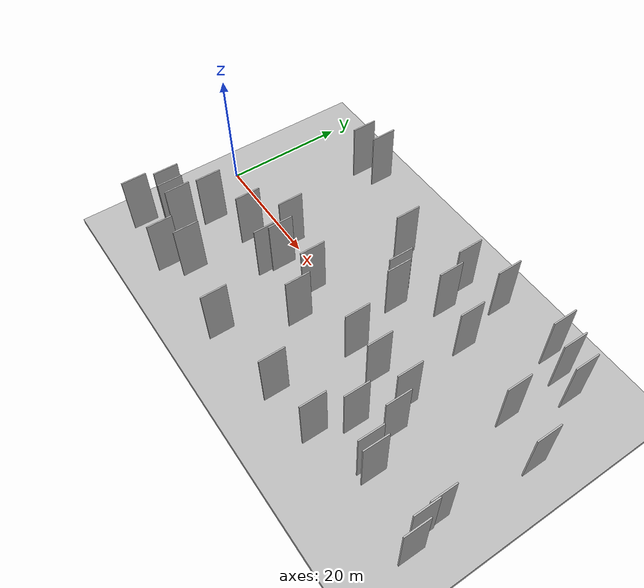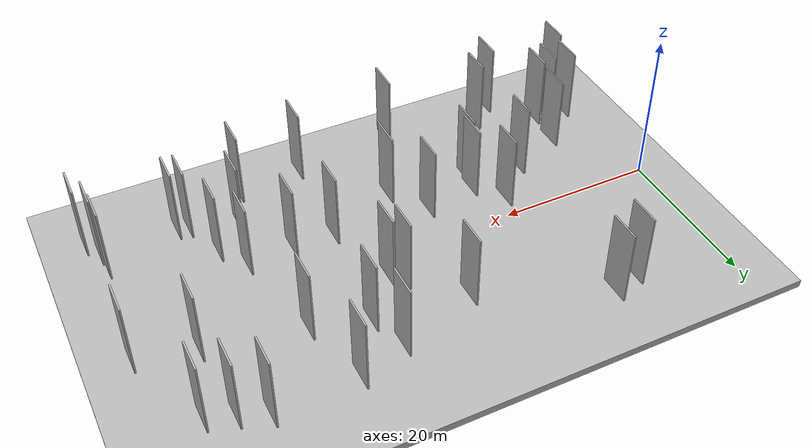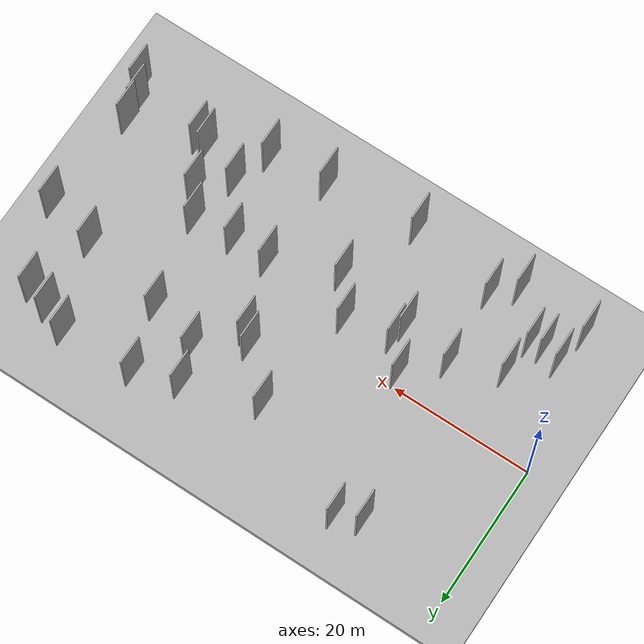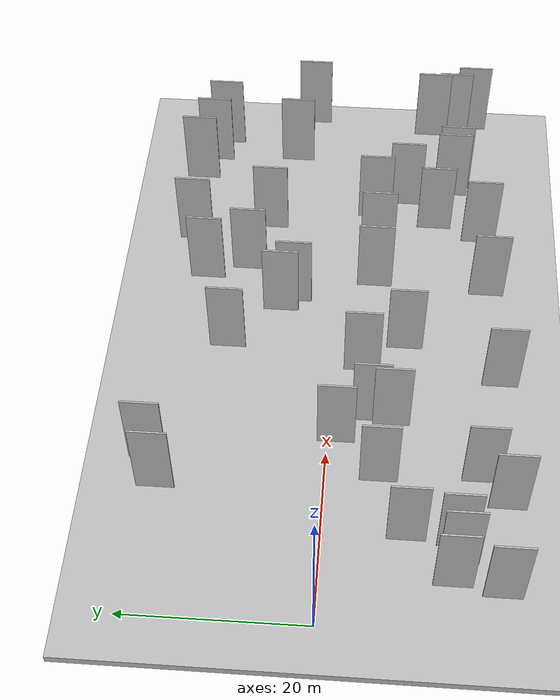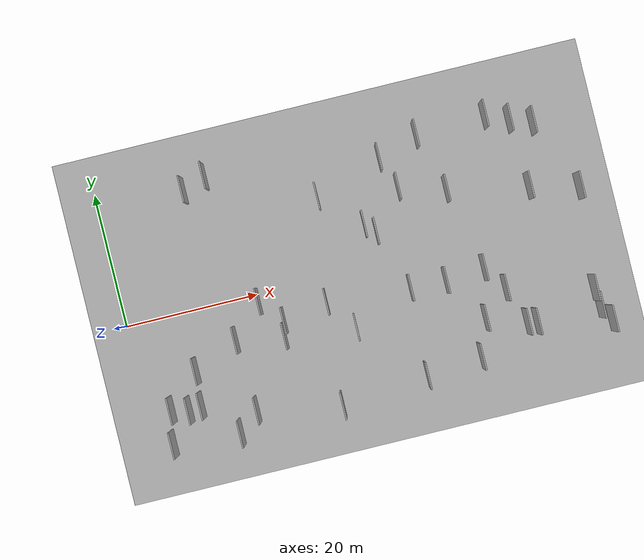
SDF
<?xml version="1.0" encoding="utf-8"?>

<sdf version="1.6">

   <world name="default">

      <gui fullscreen="0">

         <camera name="user_camera">

            <pose>-15 0 4.57585 0 0 0</pose>

            <view_controller>orbit</view_controller>

         </camera>

      </gui>

      <scene>

         <sky>

           <clouds>

             <speed>12</speed>

           </clouds>

         </sky>

         <ambient>0.4 0.4 0.4 1</ambient>

         <background>0.7 0.7 0.7 1</background>

         <shadows>1</shadows>

      </scene>

      <gravity>0 0 -9.8066</gravity>

      <magnetic_field>6e-06 2.3e-05 -4.2e-05</magnetic_field>

      <physics default="0" name="default_physics" type="ode">

         <ode>

            <solver>

               <type>quick</type>

               <iters>10</iters>

               <sor>1.0</sor>

               <use_dynamic_moi_rescaling>0</use_dynamic_moi_rescaling>

            </solver>

            <constraints>

               <cfm>0</cfm>

               <erp>0.2</erp>

               <contact_max_correcting_vel>100</contact_max_correcting_vel>

               <contact_surface_layer>0.001</contact_surface_layer>

            </constraints>

         </ode>

         <max_step_size>0.004</max_step_size>

         <real_time_factor>1</real_time_factor>

         <real_time_update_rate>250</real_time_update_rate>

      </physics>

      <light name="sun" type="directional">

         <cast_shadows>1</cast_shadows>

         <pose>0 0 10 0 0 0</pose>

         <diffuse>0.8 0.8 0.8 1</diffuse>

         <specular>0.2 0.2 0.2 1</specular>

         <attenuation>

            <range>1000</range>

            <constant>0.9</constant>

            <linear>0.01</linear>

            <quadratic>0.001</quadratic>

         </attenuation>

         <direction>-0.5 0.1 -0.9</direction>

      </light>

      <include>

         <name>ground_plane_1</name>

         <uri>model://HANNAS_ground_plane</uri>

         <pose>0 0 0  0 0 0</pose>

      </include>

      <include>

         <name>ground_plane_2</name>

         <uri>model://HANNAS_ground_plane</uri>

         <pose>100 0 0  0 0 0</pose>

      </include>

      <model name="HANNAS_wall_1">

         <static>1</static>

         <pose frame="">50.6397 8.4226 2.5 0.000000 0.000000 1.570796</pose>

         <link name="link">

            <pose frame="">0 0 5.00 0 0 0</pose>

            <collision name="collision">

               <geometry>

                  <box>

                     <size>4.00 0.2 10.00</size>

                  </box>

               </geometry>

               <max_contacts>10</max_contacts>

               <surface>

                  <contact>

                     <ode/>

                  </contact>

                  <bounce/>

                  <friction>

                     <torsional>

                        <ode/>

                     </torsional>

                     <ode/>

                  </friction>

               </surface>

            </collision>

            <visual name="visual">

               <cast_shadows>0</cast_shadows>

               <geometry>

                  <box>

                     <size>4.00 0.2 10.00</size>

                  </box>

               </geometry>

               <material>

                  <script>

                     <uri>model://HANNAS_wall/materials/scripts</uri>

                     <uri>model://HANNAS_wall/materials/textures</uri>

                     <name>vrc/HANNAS_wall</name>

                  </script>

               </material>

            </visual>

            <self_collide>0</self_collide>

            <enable_wind>0</enable_wind>

            <kinematic>0</kinematic>

         </link>

      </model>

      <model name="HANNAS_wall_2">

         <static>1</static>

         <pose frame="">43.8307 10.3824 2.5 0.000000 0.000000 1.570796</pose>

         <link name="link">

            <pose frame="">0 0 5.00 0 0 0</pose>

            <collision name="collision">

               <geometry>

                  <box>

                     <size>4.00 0.2 10.00</size>

                  </box>

               </geometry>

               <max_contacts>10</max_contacts>

               <surface>

                  <contact>

                     <ode/>

                  </contact>

                  <bounce/>

                  <friction>

                     <torsional>

                        <ode/>

                     </torsional>

                     <ode/>

                  </friction>

               </surface>

            </collision>

            <visual name="visual">

               <cast_shadows>0</cast_shadows>

               <geometry>

                  <box>

                     <size>4.00 0.2 10.00</size>

                  </box>

               </geometry>

               <material>

                  <script>

                     <uri>model://HANNAS_wall/materials/scripts</uri>

                     <uri>model://HANNAS_wall/materials/textures</uri>

                     <name>vrc/HANNAS_wall</name>

                  </script>

               </material>

            </visual>

            <self_collide>0</self_collide>

            <enable_wind>0</enable_wind>

            <kinematic>0</kinematic>

         </link>

      </model>

      <model name="HANNAS_wall_3">

         <static>1</static>

         <pose frame="">42.1590 -4.3269 2.5 0.000000 0.000000 1.570796</pose>

         <link name="link">

            <pose frame="">0 0 5.00 0 0 0</pose>

            <collision name="collision">

               <geometry>

                  <box>

                     <size>4.00 0.2 10.00</size>

                  </box>

               </geometry>

               <max_contacts>10</max_contacts>

               <surface>

                  <contact>

                     <ode/>

                  </contact>

                  <bounce/>

                  <friction>

                     <torsional>

                        <ode/>

                     </torsional>

                     <ode/>

                  </friction>

               </surface>

            </collision>

            <visual name="visual">

               <cast_shadows>0</cast_shadows>

               <geometry>

                  <box>

                     <size>4.00 0.2 10.00</size>

                  </box>

               </geometry>

               <material>

                  <script>

                     <uri>model://HANNAS_wall/materials/scripts</uri>

                     <uri>model://HANNAS_wall/materials/textures</uri>

                     <name>vrc/HANNAS_wall</name>

                  </script>

               </material>

            </visual>

            <self_collide>0</self_collide>

            <enable_wind>0</enable_wind>

            <kinematic>0</kinematic>

         </link>

      </model>

      <model name="HANNAS_wall_4">

         <static>1</static>

         <pose frame="">69.5926 4.2536 2.5 0.000000 0.000000 1.570796</pose>

         <link name="link">

            <pose frame="">0 0 5.00 0 0 0</pose>

            <collision name="collision">

               <geometry>

                  <box>

                     <size>4.00 0.2 10.00</size>

                  </box>

               </geometry>

               <max_contacts>10</max_contacts>

               <surface>

                  <contact>

                     <ode/>

                  </contact>

                  <bounce/>

                  <friction>

                     <torsional>

                        <ode/>

                     </torsional>

                     <ode/>

                  </friction>

               </surface>

            </collision>

            <visual name="visual">

               <cast_shadows>0</cast_shadows>

               <geometry>

                  <box>

                     <size>4.00 0.2 10.00</size>

                  </box>

               </geometry>

               <material>

                  <script>

                     <uri>model://HANNAS_wall/materials/scripts</uri>

                     <uri>model://HANNAS_wall/materials/textures</uri>

                     <name>vrc/HANNAS_wall</name>

                  </script>

               </material>

            </visual>

            <self_collide>0</self_collide>

            <enable_wind>0</enable_wind>

            <kinematic>0</kinematic>

         </link>

      </model>

      <model name="HANNAS_wall_5">

         <static>1</static>

         <pose frame="">65.1094 15.0538 2.5 0.000000 0.000000 1.570796</pose>

         <link name="link">

            <pose frame="">0 0 5.00 0 0 0</pose>

            <collision name="collision">

               <geometry>

                  <box>

                     <size>4.00 0.2 10.00</size>

                  </box>

               </geometry>

               <max_contacts>10</max_contacts>

               <surface>

                  <contact>

                     <ode/>

                  </contact>

                  <bounce/>

                  <friction>

                     <torsional>

                        <ode/>

                     </torsional>

                     <ode/>

                  </friction>

               </surface>

            </collision>

            <visual name="visual">

               <cast_shadows>0</cast_shadows>

               <geometry>

                  <box>

                     <size>4.00 0.2 10.00</size>

                  </box>

               </geometry>

               <material>

                  <script>

                     <uri>model://HANNAS_wall/materials/scripts</uri>

                     <uri>model://HANNAS_wall/materials/textures</uri>

                     <name>vrc/HANNAS_wall</name>

                  </script>

               </material>

            </visual>

            <self_collide>0</self_collide>

            <enable_wind>0</enable_wind>

            <kinematic>0</kinematic>

         </link>

      </model>

      <model name="HANNAS_wall_6">

         <static>1</static>

         <pose frame="">8.9120 -8.6867 2.5 0.000000 0.000000 1.570796</pose>

         <link name="link">

            <pose frame="">0 0 5.00 0 0 0</pose>

            <collision name="collision">

               <geometry>

                  <box>

                     <size>4.00 0.2 10.00</size>

                  </box>

               </geometry>

               <max_contacts>10</max_contacts>

               <surface>

                  <contact>

                     <ode/>

                  </contact>

                  <bounce/>

                  <friction>

                     <torsional>

                        <ode/>

                     </torsional>

                     <ode/>

                  </friction>

               </surface>

            </collision>

            <visual name="visual">

               <cast_shadows>0</cast_shadows>

               <geometry>

                  <box>

                     <size>4.00 0.2 10.00</size>

                  </box>

               </geometry>

               <material>

                  <script>

                     <uri>model://HANNAS_wall/materials/scripts</uri>

                     <uri>model://HANNAS_wall/materials/textures</uri>

                     <name>vrc/HANNAS_wall</name>

                  </script>

               </material>

            </visual>

            <self_collide>0</self_collide>

            <enable_wind>0</enable_wind>

            <kinematic>0</kinematic>

         </link>

      </model>

      <model name="HANNAS_wall_7">

         <static>1</static>

         <pose frame="">6.6334 -13.9903 2.5 0.000000 0.000000 1.570796</pose>

         <link name="link">

            <pose frame="">0 0 5.00 0 0 0</pose>

            <collision name="collision">

               <geometry>

                  <box>

                     <size>4.00 0.2 10.00</size>

                  </box>

               </geometry>

               <max_contacts>10</max_contacts>

               <surface>

                  <contact>

                     <ode/>

                  </contact>

                  <bounce/>

                  <friction>

                     <torsional>

                        <ode/>

                     </torsional>

                     <ode/>

                  </friction>

               </surface>

            </collision>

            <visual name="visual">

               <cast_shadows>0</cast_shadows>

               <geometry>

                  <box>

                     <size>4.00 0.2 10.00</size>

                  </box>

               </geometry>

               <material>

                  <script>

                     <uri>model://HANNAS_wall/materials/scripts</uri>

                     <uri>model://HANNAS_wall/materials/textures</uri>

                     <name>vrc/HANNAS_wall</name>

                  </script>

               </material>

            </visual>

            <self_collide>0</self_collide>

            <enable_wind>0</enable_wind>

            <kinematic>0</kinematic>

         </link>

      </model>

      <model name="HANNAS_wall_8">

         <static>1</static>

         <pose frame="">53.2433 -4.0033 2.5 0.000000 0.000000 1.570796</pose>

         <link name="link">

            <pose frame="">0 0 5.00 0 0 0</pose>

            <collision name="collision">

               <geometry>

                  <box>

                     <size>4.00 0.2 10.00</size>

                  </box>

               </geometry>

               <max_contacts>10</max_contacts>

               <surface>

                  <contact>

                     <ode/>

                  </contact>

                  <bounce/>

                  <friction>

                     <torsional>

                        <ode/>

                     </torsional>

                     <ode/>

                  </friction>

               </surface>

            </collision>

            <visual name="visual">

               <cast_shadows>0</cast_shadows>

               <geometry>

                  <box>

                     <size>4.00 0.2 10.00</size>

                  </box>

               </geometry>

               <material>

                  <script>

                     <uri>model://HANNAS_wall/materials/scripts</uri>

                     <uri>model://HANNAS_wall/materials/textures</uri>

                     <name>vrc/HANNAS_wall</name>

                  </script>

               </material>

            </visual>

            <self_collide>0</self_collide>

            <enable_wind>0</enable_wind>

            <kinematic>0</kinematic>

         </link>

      </model>

      <model name="HANNAS_wall_9">

         <static>1</static>

         <pose frame="">49.8669 -16.4884 2.5 0.000000 0.000000 1.570796</pose>

         <link name="link">

            <pose frame="">0 0 5.00 0 0 0</pose>

            <collision name="collision">

               <geometry>

                  <box>

                     <size>4.00 0.2 10.00</size>

                  </box>

               </geometry>

               <max_contacts>10</max_contacts>

               <surface>

                  <contact>

                     <ode/>

                  </contact>

                  <bounce/>

                  <friction>

                     <torsional>

                        <ode/>

                     </torsional>

                     <ode/>

                  </friction>

               </surface>

            </collision>

            <visual name="visual">

               <cast_shadows>0</cast_shadows>

               <geometry>

                  <box>

                     <size>4.00 0.2 10.00</size>

                  </box>

               </geometry>

               <material>

                  <script>

                     <uri>model://HANNAS_wall/materials/scripts</uri>

                     <uri>model://HANNAS_wall/materials/textures</uri>

                     <name>vrc/HANNAS_wall</name>

                  </script>

               </material>

            </visual>

            <self_collide>0</self_collide>

            <enable_wind>0</enable_wind>

            <kinematic>0</kinematic>

         </link>

      </model>

      <model name="HANNAS_wall_10">

         <static>1</static>

         <pose frame="">47.4267 -4.4789 2.5 0.000000 0.000000 1.570796</pose>

         <link name="link">

            <pose frame="">0 0 5.00 0 0 0</pose>

            <collision name="collision">

               <geometry>

                  <box>

                     <size>4.00 0.2 10.00</size>

                  </box>

               </geometry>

               <max_contacts>10</max_contacts>

               <surface>

                  <contact>

                     <ode/>

                  </contact>

                  <bounce/>

                  <friction>

                     <torsional>

                        <ode/>

                     </torsional>

                     <ode/>

                  </friction>

               </surface>

            </collision>

            <visual name="visual">

               <cast_shadows>0</cast_shadows>

               <geometry>

                  <box>

                     <size>4.00 0.2 10.00</size>

                  </box>

               </geometry>

               <material>

                  <script>

                     <uri>model://HANNAS_wall/materials/scripts</uri>

                     <uri>model://HANNAS_wall/materials/textures</uri>

                     <name>vrc/HANNAS_wall</name>

                  </script>

               </material>

            </visual>

            <self_collide>0</self_collide>

            <enable_wind>0</enable_wind>

            <kinematic>0</kinematic>

         </link>

      </model>

      <model name="HANNAS_wall_11">

         <static>1</static>

         <pose frame="">32.1206 11.7842 2.5 0.000000 0.000000 1.570796</pose>

         <link name="link">

            <pose frame="">0 0 5.00 0 0 0</pose>

            <collision name="collision">

               <geometry>

                  <box>

                     <size>4.00 0.2 10.00</size>

                  </box>

               </geometry>

               <max_contacts>10</max_contacts>

               <surface>

                  <contact>

                     <ode/>

                  </contact>

                  <bounce/>

                  <friction>

                     <torsional>

                        <ode/>

                     </torsional>

                     <ode/>

                  </friction>

               </surface>

            </collision>

            <visual name="visual">

               <cast_shadows>0</cast_shadows>

               <geometry>

                  <box>

                     <size>4.00 0.2 10.00</size>

                  </box>

               </geometry>

               <material>

                  <script>

                     <uri>model://HANNAS_wall/materials/scripts</uri>

                     <uri>model://HANNAS_wall/materials/textures</uri>

                     <name>vrc/HANNAS_wall</name>

                  </script>

               </material>

            </visual>

            <self_collide>0</self_collide>

            <enable_wind>0</enable_wind>

            <kinematic>0</kinematic>

         </link>

      </model>

      <model name="HANNAS_wall_12">

         <static>1</static>

         <pose frame="">23.1400 -4.5914 2.5 0.000000 0.000000 1.570796</pose>

         <link name="link">

            <pose frame="">0 0 5.00 0 0 0</pose>

            <collision name="collision">

               <geometry>

                  <box>

                     <size>4.00 0.2 10.00</size>

                  </box>

               </geometry>

               <max_contacts>10</max_contacts>

               <surface>

                  <contact>

                     <ode/>

                  </contact>

                  <bounce/>

                  <friction>

                     <torsional>

                        <ode/>

                     </torsional>

                     <ode/>

                  </friction>

               </surface>

            </collision>

            <visual name="visual">

               <cast_shadows>0</cast_shadows>

               <geometry>

                  <box>

                     <size>4.00 0.2 10.00</size>

                  </box>

               </geometry>

               <material>

                  <script>

                     <uri>model://HANNAS_wall/materials/scripts</uri>

                     <uri>model://HANNAS_wall/materials/textures</uri>

                     <name>vrc/HANNAS_wall</name>

                  </script>

               </material>

            </visual>

            <self_collide>0</self_collide>

            <enable_wind>0</enable_wind>

            <kinematic>0</kinematic>

         </link>

      </model>

      <model name="HANNAS_wall_13">

         <static>1</static>

         <pose frame="">61.8893 16.1667 2.5 0.000000 0.000000 1.570796</pose>

         <link name="link">

            <pose frame="">0 0 5.00 0 0 0</pose>

            <collision name="collision">

               <geometry>

                  <box>

                     <size>4.00 0.2 10.00</size>

                  </box>

               </geometry>

               <max_contacts>10</max_contacts>

               <surface>

                  <contact>

                     <ode/>

                  </contact>

                  <bounce/>

                  <friction>

                     <torsional>

                        <ode/>

                     </torsional>

                     <ode/>

                  </friction>

               </surface>

            </collision>

            <visual name="visual">

               <cast_shadows>0</cast_shadows>

               <geometry>

                  <box>

                     <size>4.00 0.2 10.00</size>

                  </box>

               </geometry>

               <material>

                  <script>

                     <uri>model://HANNAS_wall/materials/scripts</uri>

                     <uri>model://HANNAS_wall/materials/textures</uri>

                     <name>vrc/HANNAS_wall</name>

                  </script>

               </material>

            </visual>

            <self_collide>0</self_collide>

            <enable_wind>0</enable_wind>

            <kinematic>0</kinematic>

         </link>

      </model>

      <model name="HANNAS_wall_14">

         <static>1</static>

         <pose frame="">55.6192 -7.6167 2.5 0.000000 0.000000 1.570796</pose>

         <link name="link">

            <pose frame="">0 0 5.00 0 0 0</pose>

            <collision name="collision">

               <geometry>

                  <box>

                     <size>4.00 0.2 10.00</size>

                  </box>

               </geometry>

               <max_contacts>10</max_contacts>

               <surface>

                  <contact>

                     <ode/>

                  </contact>

                  <bounce/>

                  <friction>

                     <torsional>

                        <ode/>

                     </torsional>

                     <ode/>

                  </friction>

               </surface>

            </collision>

            <visual name="visual">

               <cast_shadows>0</cast_shadows>

               <geometry>

                  <box>

                     <size>4.00 0.2 10.00</size>

                  </box>

               </geometry>

               <material>

                  <script>

                     <uri>model://HANNAS_wall/materials/scripts</uri>

                     <uri>model://HANNAS_wall/materials/textures</uri>

                     <name>vrc/HANNAS_wall</name>

                  </script>

               </material>

            </visual>

            <self_collide>0</self_collide>

            <enable_wind>0</enable_wind>

            <kinematic>0</kinematic>

         </link>

      </model>

      <model name="HANNAS_wall_15">

         <static>1</static>

         <pose frame="">4.0986 -13.3907 2.5 0.000000 0.000000 1.570796</pose>

         <link name="link">

            <pose frame="">0 0 5.00 0 0 0</pose>

            <collision name="collision">

               <geometry>

                  <box>

                     <size>4.00 0.2 10.00</size>

                  </box>

               </geometry>

               <max_contacts>10</max_contacts>

               <surface>

                  <contact>

                     <ode/>

                  </contact>

                  <bounce/>

                  <friction>

                     <torsional>

                        <ode/>

                     </torsional>

                     <ode/>

                  </friction>

               </surface>

            </collision>

            <visual name="visual">

               <cast_shadows>0</cast_shadows>

               <geometry>

                  <box>

                     <size>4.00 0.2 10.00</size>

                  </box>

               </geometry>

               <material>

                  <script>

                     <uri>model://HANNAS_wall/materials/scripts</uri>

                     <uri>model://HANNAS_wall/materials/textures</uri>

                     <name>vrc/HANNAS_wall</name>

                  </script>

               </material>

            </visual>

            <self_collide>0</self_collide>

            <enable_wind>0</enable_wind>

            <kinematic>0</kinematic>

         </link>

      </model>

      <model name="HANNAS_wall_16">

         <static>1</static>

         <pose frame="">20.1673 -1.0237 2.5 0.000000 0.000000 1.570796</pose>

         <link name="link">

            <pose frame="">0 0 5.00 0 0 0</pose>

            <collision name="collision">

               <geometry>

                  <box>

                     <size>4.00 0.2 10.00</size>

                  </box>

               </geometry>

               <max_contacts>10</max_contacts>

               <surface>

                  <contact>

                     <ode/>

                  </contact>

                  <bounce/>

                  <friction>

                     <torsional>

                        <ode/>

                     </torsional>

                     <ode/>

                  </friction>

               </surface>

            </collision>

            <visual name="visual">

               <cast_shadows>0</cast_shadows>

               <geometry>

                  <box>

                     <size>4.00 0.2 10.00</size>

                  </box>

               </geometry>

               <material>

                  <script>

                     <uri>model://HANNAS_wall/materials/scripts</uri>

                     <uri>model://HANNAS_wall/materials/textures</uri>

                     <name>vrc/HANNAS_wall</name>

                  </script>

               </material>

            </visual>

            <self_collide>0</self_collide>

            <enable_wind>0</enable_wind>

            <kinematic>0</kinematic>

         </link>

      </model>

      <model name="HANNAS_wall_17">

         <static>1</static>

         <pose frame="">28.6035 -18.6028 2.5 0.000000 0.000000 1.570796</pose>

         <link name="link">

            <pose frame="">0 0 5.00 0 0 0</pose>

            <collision name="collision">

               <geometry>

                  <box>

                     <size>4.00 0.2 10.00</size>

                  </box>

               </geometry>

               <max_contacts>10</max_contacts>

               <surface>

                  <contact>

                     <ode/>

                  </contact>

                  <bounce/>

                  <friction>

                     <torsional>

                        <ode/>

                     </torsional>

                     <ode/>

                  </friction>

               </surface>

            </collision>

            <visual name="visual">

               <cast_shadows>0</cast_shadows>

               <geometry>

                  <box>

                     <size>4.00 0.2 10.00</size>

                  </box>

               </geometry>

               <material>

                  <script>

                     <uri>model://HANNAS_wall/materials/scripts</uri>

                     <uri>model://HANNAS_wall/materials/textures</uri>

                     <name>vrc/HANNAS_wall</name>

                  </script>

               </material>

            </visual>

            <self_collide>0</self_collide>

            <enable_wind>0</enable_wind>

            <kinematic>0</kinematic>

         </link>

      </model>

      <model name="HANNAS_wall_18">

         <static>1</static>

         <pose frame="">69.6600 -15.6414 2.5 0.000000 0.000000 1.570796</pose>

         <link name="link">

            <pose frame="">0 0 5.00 0 0 0</pose>

            <collision name="collision">

               <geometry>

                  <box>

                     <size>4.00 0.2 10.00</size>

                  </box>

               </geometry>

               <max_contacts>10</max_contacts>

               <surface>

                  <contact>

                     <ode/>

                  </contact>

                  <bounce/>

                  <friction>

                     <torsional>

                        <ode/>

                     </torsional>

                     <ode/>

                  </friction>

               </surface>

            </collision>

            <visual name="visual">

               <cast_shadows>0</cast_shadows>

               <geometry>

                  <box>

                     <size>4.00 0.2 10.00</size>

                  </box>

               </geometry>

               <material>

                  <script>

                     <uri>model://HANNAS_wall/materials/scripts</uri>

                     <uri>model://HANNAS_wall/materials/textures</uri>

                     <name>vrc/HANNAS_wall</name>

                  </script>

               </material>

            </visual>

            <self_collide>0</self_collide>

            <enable_wind>0</enable_wind>

            <kinematic>0</kinematic>

         </link>

      </model>

      <model name="HANNAS_wall_19">

         <static>1</static>

         <pose frame="">58.5281 17.5975 2.5 0.000000 0.000000 1.570796</pose>

         <link name="link">

            <pose frame="">0 0 5.00 0 0 0</pose>

            <collision name="collision">

               <geometry>

                  <box>

                     <size>4.00 0.2 10.00</size>

                  </box>

               </geometry>

               <max_contacts>10</max_contacts>

               <surface>

                  <contact>

                     <ode/>

                  </contact>

                  <bounce/>

                  <friction>

                     <torsional>

                        <ode/>

                     </torsional>

                     <ode/>

                  </friction>

               </surface>

            </collision>

            <visual name="visual">

               <cast_shadows>0</cast_shadows>

               <geometry>

                  <box>

                     <size>4.00 0.2 10.00</size>

                  </box>

               </geometry>

               <material>

                  <script>

                     <uri>model://HANNAS_wall/materials/scripts</uri>

                     <uri>model://HANNAS_wall/materials/textures</uri>

                     <name>vrc/HANNAS_wall</name>

                  </script>

               </material>

            </visual>

            <self_collide>0</self_collide>

            <enable_wind>0</enable_wind>

            <kinematic>0</kinematic>

         </link>

      </model>

      <model name="HANNAS_wall_20">

         <static>1</static>

         <pose frame="">58.9130 -13.4479 2.5 0.000000 0.000000 1.570796</pose>

         <link name="link">

            <pose frame="">0 0 5.00 0 0 0</pose>

            <collision name="collision">

               <geometry>

                  <box>

                     <size>4.00 0.2 10.00</size>

                  </box>

               </geometry>

               <max_contacts>10</max_contacts>

               <surface>

                  <contact>

                     <ode/>

                  </contact>

                  <bounce/>

                  <friction>

                     <torsional>

                        <ode/>

                     </torsional>

                     <ode/>

                  </friction>

               </surface>

            </collision>

            <visual name="visual">

               <cast_shadows>0</cast_shadows>

               <geometry>

                  <box>

                     <size>4.00 0.2 10.00</size>

                  </box>

               </geometry>

               <material>

                  <script>

                     <uri>model://HANNAS_wall/materials/scripts</uri>

                     <uri>model://HANNAS_wall/materials/textures</uri>

                     <name>vrc/HANNAS_wall</name>

                  </script>

               </material>

            </visual>

            <self_collide>0</self_collide>

            <enable_wind>0</enable_wind>

            <kinematic>0</kinematic>

         </link>

      </model>

      <model name="HANNAS_wall_21">

         <static>1</static>

         <pose frame="">15.6066 -5.6828 2.5 0.000000 0.000000 1.570796</pose>

         <link name="link">

            <pose frame="">0 0 5.00 0 0 0</pose>

            <collision name="collision">

               <geometry>

                  <box>

                     <size>4.00 0.2 10.00</size>

                  </box>

               </geometry>

               <max_contacts>10</max_contacts>

               <surface>

                  <contact>

                     <ode/>

                  </contact>

                  <bounce/>

                  <friction>

                     <torsional>

                        <ode/>

                     </torsional>

                     <ode/>

                  </friction>

               </surface>

            </collision>

            <visual name="visual">

               <cast_shadows>0</cast_shadows>

               <geometry>

                  <box>

                     <size>4.00 0.2 10.00</size>

                  </box>

               </geometry>

               <material>

                  <script>

                     <uri>model://HANNAS_wall/materials/scripts</uri>

                     <uri>model://HANNAS_wall/materials/textures</uri>

                     <name>vrc/HANNAS_wall</name>

                  </script>

               </material>

            </visual>

            <self_collide>0</self_collide>

            <enable_wind>0</enable_wind>

            <kinematic>0</kinematic>

         </link>

      </model>

      <model name="HANNAS_wall_22">

         <static>1</static>

         <pose frame="">48.1696 17.2000 2.5 0.000000 0.000000 1.570796</pose>

         <link name="link">

            <pose frame="">0 0 5.00 0 0 0</pose>

            <collision name="collision">

               <geometry>

                  <box>

                     <size>4.00 0.2 10.00</size>

                  </box>

               </geometry>

               <max_contacts>10</max_contacts>

               <surface>

                  <contact>

                     <ode/>

                  </contact>

                  <bounce/>

                  <friction>

                     <torsional>

                        <ode/>

                     </torsional>

                     <ode/>

                  </friction>

               </surface>

            </collision>

            <visual name="visual">

               <cast_shadows>0</cast_shadows>

               <geometry>

                  <box>

                     <size>4.00 0.2 10.00</size>

                  </box>

               </geometry>

               <material>

                  <script>

                     <uri>model://HANNAS_wall/materials/scripts</uri>

                     <uri>model://HANNAS_wall/materials/textures</uri>

                     <name>vrc/HANNAS_wall</name>

                  </script>

               </material>

            </visual>

            <self_collide>0</self_collide>

            <enable_wind>0</enable_wind>

            <kinematic>0</kinematic>

         </link>

      </model>

      <model name="HANNAS_wall_23">

         <static>1</static>

         <pose frame="">13.3595 17.3573 2.5 0.000000 0.000000 1.570796</pose>

         <link name="link">

            <pose frame="">0 0 5.00 0 0 0</pose>

            <collision name="collision">

               <geometry>

                  <box>

                     <size>4.00 0.2 10.00</size>

                  </box>

               </geometry>

               <max_contacts>10</max_contacts>

               <surface>

                  <contact>

                     <ode/>

                  </contact>

                  <bounce/>

                  <friction>

                     <torsional>

                        <ode/>

                     </torsional>

                     <ode/>

                  </friction>

               </surface>

            </collision>

            <visual name="visual">

               <cast_shadows>0</cast_shadows>

               <geometry>

                  <box>

                     <size>4.00 0.2 10.00</size>

                  </box>

               </geometry>

               <material>

                  <script>

                     <uri>model://HANNAS_wall/materials/scripts</uri>

                     <uri>model://HANNAS_wall/materials/textures</uri>

                     <name>vrc/HANNAS_wall</name>

                  </script>

               </material>

            </visual>

            <self_collide>0</self_collide>

            <enable_wind>0</enable_wind>

            <kinematic>0</kinematic>

         </link>

      </model>

      <model name="HANNAS_wall_24">

         <static>1</static>

         <pose frame="">57.5227 -13.1504 2.5 0.000000 0.000000 1.570796</pose>

         <link name="link">

            <pose frame="">0 0 5.00 0 0 0</pose>

            <collision name="collision">

               <geometry>

                  <box>

                     <size>4.00 0.2 10.00</size>

                  </box>

               </geometry>

               <max_contacts>10</max_contacts>

               <surface>

                  <contact>

                     <ode/>

                  </contact>

                  <bounce/>

                  <friction>

                     <torsional>

                        <ode/>

                     </torsional>

                     <ode/>

                  </friction>

               </surface>

            </collision>

            <visual name="visual">

               <cast_shadows>0</cast_shadows>

               <geometry>

                  <box>

                     <size>4.00 0.2 10.00</size>

                  </box>

               </geometry>

               <material>

                  <script>

                     <uri>model://HANNAS_wall/materials/scripts</uri>

                     <uri>model://HANNAS_wall/materials/textures</uri>

                     <name>vrc/HANNAS_wall</name>

                  </script>

               </material>

            </visual>

            <self_collide>0</self_collide>

            <enable_wind>0</enable_wind>

            <kinematic>0</kinematic>

         </link>

      </model>

      <model name="HANNAS_wall_25">

         <static>1</static>

         <pose frame="">41.5627 -17.2891 2.5 0.000000 0.000000 1.570796</pose>

         <link name="link">

            <pose frame="">0 0 5.00 0 0 0</pose>

            <collision name="collision">

               <geometry>

                  <box>

                     <size>4.00 0.2 10.00</size>

                  </box>

               </geometry>

               <max_contacts>10</max_contacts>

               <surface>

                  <contact>

                     <ode/>

                  </contact>

                  <bounce/>

                  <friction>

                     <torsional>

                        <ode/>

                     </torsional>

                     <ode/>

                  </friction>

               </surface>

            </collision>

            <visual name="visual">

               <cast_shadows>0</cast_shadows>

               <geometry>

                  <box>

                     <size>4.00 0.2 10.00</size>

                  </box>

               </geometry>

               <material>

                  <script>

                     <uri>model://HANNAS_wall/materials/scripts</uri>

                     <uri>model://HANNAS_wall/materials/textures</uri>

                     <name>vrc/HANNAS_wall</name>

                  </script>

               </material>

            </visual>

            <self_collide>0</self_collide>

            <enable_wind>0</enable_wind>

            <kinematic>0</kinematic>

         </link>

      </model>

      <model name="HANNAS_wall_26">

         <static>1</static>

         <pose frame="">68.1840 -10.6696 2.5 0.000000 0.000000 1.570796</pose>

         <link name="link">

            <pose frame="">0 0 5.00 0 0 0</pose>

            <collision name="collision">

               <geometry>

                  <box>

                     <size>4.00 0.2 10.00</size>

                  </box>

               </geometry>

               <max_contacts>10</max_contacts>

               <surface>

                  <contact>

                     <ode/>

                  </contact>

                  <bounce/>

                  <friction>

                     <torsional>

                        <ode/>

                     </torsional>

                     <ode/>

                  </friction>

               </surface>

            </collision>

            <visual name="visual">

               <cast_shadows>0</cast_shadows>

               <geometry>

                  <box>

                     <size>4.00 0.2 10.00</size>

                  </box>

               </geometry>

               <material>

                  <script>

                     <uri>model://HANNAS_wall/materials/scripts</uri>

                     <uri>model://HANNAS_wall/materials/textures</uri>

                     <name>vrc/HANNAS_wall</name>

                  </script>

               </material>

            </visual>

            <self_collide>0</self_collide>

            <enable_wind>0</enable_wind>

            <kinematic>0</kinematic>

         </link>

      </model>

      <model name="HANNAS_wall_27">

         <static>1</static>

         <pose frame="">62.4674 6.0219 2.5 0.000000 0.000000 1.570796</pose>

         <link name="link">

            <pose frame="">0 0 5.00 0 0 0</pose>

            <collision name="collision">

               <geometry>

                  <box>

                     <size>4.00 0.2 10.00</size>

                  </box>

               </geometry>

               <max_contacts>10</max_contacts>

               <surface>

                  <contact>

                     <ode/>

                  </contact>

                  <bounce/>

                  <friction>

                     <torsional>

                        <ode/>

                     </torsional>

                     <ode/>

                  </friction>

               </surface>

            </collision>

            <visual name="visual">

               <cast_shadows>0</cast_shadows>

               <geometry>

                  <box>

                     <size>4.00 0.2 10.00</size>

                  </box>

               </geometry>

               <material>

                  <script>

                     <uri>model://HANNAS_wall/materials/scripts</uri>

                     <uri>model://HANNAS_wall/materials/textures</uri>

                     <name>vrc/HANNAS_wall</name>

                  </script>

               </material>

            </visual>

            <self_collide>0</self_collide>

            <enable_wind>0</enable_wind>

            <kinematic>0</kinematic>

         </link>

      </model>

      <model name="HANNAS_wall_28">

         <static>1</static>

         <pose frame="">29.7892 -3.3860 2.5 0.000000 0.000000 1.570796</pose>

         <link name="link">

            <pose frame="">0 0 5.00 0 0 0</pose>

            <collision name="collision">

               <geometry>

                  <box>

                     <size>4.00 0.2 10.00</size>

                  </box>

               </geometry>

               <max_contacts>10</max_contacts>

               <surface>

                  <contact>

                     <ode/>

                  </contact>

                  <bounce/>

                  <friction>

                     <torsional>

                        <ode/>

                     </torsional>

                     <ode/>

                  </friction>

               </surface>

            </collision>

            <visual name="visual">

               <cast_shadows>0</cast_shadows>

               <geometry>

                  <box>

                     <size>4.00 0.2 10.00</size>

                  </box>

               </geometry>

               <material>

                  <script>

                     <uri>model://HANNAS_wall/materials/scripts</uri>

                     <uri>model://HANNAS_wall/materials/textures</uri>

                     <name>vrc/HANNAS_wall</name>

                  </script>

               </material>

            </visual>

            <self_collide>0</self_collide>

            <enable_wind>0</enable_wind>

            <kinematic>0</kinematic>

         </link>

      </model>

      <model name="HANNAS_wall_29">

         <static>1</static>

         <pose frame="">13.1965 -19.0006 2.5 0.000000 0.000000 1.570796</pose>

         <link name="link">

            <pose frame="">0 0 5.00 0 0 0</pose>

            <collision name="collision">

               <geometry>

                  <box>

                     <size>4.00 0.2 10.00</size>

                  </box>

               </geometry>

               <max_contacts>10</max_contacts>

               <surface>

                  <contact>

                     <ode/>

                  </contact>

                  <bounce/>

                  <friction>

                     <torsional>

                        <ode/>

                     </torsional>

                     <ode/>

                  </friction>

               </surface>

            </collision>

            <visual name="visual">

               <cast_shadows>0</cast_shadows>

               <geometry>

                  <box>

                     <size>4.00 0.2 10.00</size>

                  </box>

               </geometry>

               <material>

                  <script>

                     <uri>model://HANNAS_wall/materials/scripts</uri>

                     <uri>model://HANNAS_wall/materials/textures</uri>

                     <name>vrc/HANNAS_wall</name>

                  </script>

               </material>

            </visual>

            <self_collide>0</self_collide>

            <enable_wind>0</enable_wind>

            <kinematic>0</kinematic>

         </link>

      </model>

      <model name="HANNAS_wall_30">

         <static>1</static>

         <pose frame="">8.5071 -13.7515 2.5 0.000000 0.000000 1.570796</pose>

         <link name="link">

            <pose frame="">0 0 5.00 0 0 0</pose>

            <collision name="collision">

               <geometry>

                  <box>

                     <size>4.00 0.2 10.00</size>

                  </box>

               </geometry>

               <max_contacts>10</max_contacts>

               <surface>

                  <contact>

                     <ode/>

                  </contact>

                  <bounce/>

                  <friction>

                     <torsional>

                        <ode/>

                     </torsional>

                     <ode/>

                  </friction>

               </surface>

            </collision>

            <visual name="visual">

               <cast_shadows>0</cast_shadows>

               <geometry>

                  <box>

                     <size>4.00 0.2 10.00</size>

                  </box>

               </geometry>

               <material>

                  <script>

                     <uri>model://HANNAS_wall/materials/scripts</uri>

                     <uri>model://HANNAS_wall/materials/textures</uri>

                     <name>vrc/HANNAS_wall</name>

                  </script>

               </material>

            </visual>

            <self_collide>0</self_collide>

            <enable_wind>0</enable_wind>

            <kinematic>0</kinematic>

         </link>

      </model>

      <model name="HANNAS_wall_31">

         <static>1</static>

         <pose frame="">68.4114 -13.2956 2.5 0.000000 0.000000 1.570796</pose>

         <link name="link">

            <pose frame="">0 0 5.00 0 0 0</pose>

            <collision name="collision">

               <geometry>

                  <box>

                     <size>4.00 0.2 10.00</size>

                  </box>

               </geometry>

               <max_contacts>10</max_contacts>

               <surface>

                  <contact>

                     <ode/>

                  </contact>

                  <bounce/>

                  <friction>

                     <torsional>

                        <ode/>

                     </torsional>

                     <ode/>

                  </friction>

               </surface>

            </collision>

            <visual name="visual">

               <cast_shadows>0</cast_shadows>

               <geometry>

                  <box>

                     <size>4.00 0.2 10.00</size>

                  </box>

               </geometry>

               <material>

                  <script>

                     <uri>model://HANNAS_wall/materials/scripts</uri>

                     <uri>model://HANNAS_wall/materials/textures</uri>

                     <name>vrc/HANNAS_wall</name>

                  </script>

               </material>

            </visual>

            <self_collide>0</self_collide>

            <enable_wind>0</enable_wind>

            <kinematic>0</kinematic>

         </link>

      </model>

      <model name="HANNAS_wall_32">

         <static>1</static>

         <pose frame="">51.7629 -11.1751 2.5 0.000000 0.000000 1.570796</pose>

         <link name="link">

            <pose frame="">0 0 5.00 0 0 0</pose>

            <collision name="collision">

               <geometry>

                  <box>

                     <size>4.00 0.2 10.00</size>

                  </box>

               </geometry>

               <max_contacts>10</max_contacts>

               <surface>

                  <contact>

                     <ode/>

                  </contact>

                  <bounce/>

                  <friction>

                     <torsional>

                        <ode/>

                     </torsional>

                     <ode/>

                  </friction>

               </surface>

            </collision>

            <visual name="visual">

               <cast_shadows>0</cast_shadows>

               <geometry>

                  <box>

                     <size>4.00 0.2 10.00</size>

                  </box>

               </geometry>

               <material>

                  <script>

                     <uri>model://HANNAS_wall/materials/scripts</uri>

                     <uri>model://HANNAS_wall/materials/textures</uri>

                     <name>vrc/HANNAS_wall</name>

                  </script>

               </material>

            </visual>

            <self_collide>0</self_collide>

            <enable_wind>0</enable_wind>

            <kinematic>0</kinematic>

         </link>

      </model>

      <model name="HANNAS_wall_33">

         <static>1</static>

         <pose frame="">3.2167 -18.2786 2.5 0.000000 0.000000 1.570796</pose>

         <link name="link">

            <pose frame="">0 0 5.00 0 0 0</pose>

            <collision name="collision">

               <geometry>

                  <box>

                     <size>4.00 0.2 10.00</size>

                  </box>

               </geometry>

               <max_contacts>10</max_contacts>

               <surface>

                  <contact>

                     <ode/>

                  </contact>

                  <bounce/>

                  <friction>

                     <torsional>

                        <ode/>

                     </torsional>

                     <ode/>

                  </friction>

               </surface>

            </collision>

            <visual name="visual">

               <cast_shadows>0</cast_shadows>

               <geometry>

                  <box>

                     <size>4.00 0.2 10.00</size>

                  </box>

               </geometry>

               <material>

                  <script>

                     <uri>model://HANNAS_wall/materials/scripts</uri>

                     <uri>model://HANNAS_wall/materials/textures</uri>

                     <name>vrc/HANNAS_wall</name>

                  </script>

               </material>

            </visual>

            <self_collide>0</self_collide>

            <enable_wind>0</enable_wind>

            <kinematic>0</kinematic>

         </link>

      </model>

      <model name="HANNAS_wall_34">

         <static>1</static>

         <pose frame="">42.1631 15.1757 2.5 0.000000 0.000000 1.570796</pose>

         <link name="link">

            <pose frame="">0 0 5.00 0 0 0</pose>

            <collision name="collision">

               <geometry>

                  <box>

                     <size>4.00 0.2 10.00</size>

                  </box>

               </geometry>

               <max_contacts>10</max_contacts>

               <surface>

                  <contact>

                     <ode/>

                  </contact>

                  <bounce/>

                  <friction>

                     <torsional>

                        <ode/>

                     </torsional>

                     <ode/>

                  </friction>

               </surface>

            </collision>

            <visual name="visual">

               <cast_shadows>0</cast_shadows>

               <geometry>

                  <box>

                     <size>4.00 0.2 10.00</size>

                  </box>

               </geometry>

               <material>

                  <script>

                     <uri>model://HANNAS_wall/materials/scripts</uri>

                     <uri>model://HANNAS_wall/materials/textures</uri>

                     <name>vrc/HANNAS_wall</name>

                  </script>

               </material>

            </visual>

            <self_collide>0</self_collide>

            <enable_wind>0</enable_wind>

            <kinematic>0</kinematic>

         </link>

      </model>

      <model name="HANNAS_wall_35">

         <static>1</static>

         <pose frame="">16.8144 18.6161 2.5 0.000000 0.000000 1.570796</pose>

         <link name="link">

            <pose frame="">0 0 5.00 0 0 0</pose>

            <collision name="collision">

               <geometry>

                  <box>

                     <size>4.00 0.2 10.00</size>

                  </box>

               </geometry>

               <max_contacts>10</max_contacts>

               <surface>

                  <contact>

                     <ode/>

                  </contact>

                  <bounce/>

                  <friction>

                     <torsional>

                        <ode/>

                     </torsional>

                     <ode/>

                  </friction>

               </surface>

            </collision>

            <visual name="visual">

               <cast_shadows>0</cast_shadows>

               <geometry>

                  <box>

                     <size>4.00 0.2 10.00</size>

                  </box>

               </geometry>

               <material>

                  <script>

                     <uri>model://HANNAS_wall/materials/scripts</uri>

                     <uri>model://HANNAS_wall/materials/textures</uri>

                     <name>vrc/HANNAS_wall</name>

                  </script>

               </material>

            </visual>

            <self_collide>0</self_collide>

            <enable_wind>0</enable_wind>

            <kinematic>0</kinematic>

         </link>

      </model>

      <model name="HANNAS_wall_36">

         <static>1</static>

         <pose frame="">37.7752 6.2489 2.5 0.000000 0.000000 1.570796</pose>

         <link name="link">

            <pose frame="">0 0 5.00 0 0 0</pose>

            <collision name="collision">

               <geometry>

                  <box>

                     <size>4.00 0.2 10.00</size>

                  </box>

               </geometry>

               <max_contacts>10</max_contacts>

               <surface>

                  <contact>

                     <ode/>

                  </contact>

                  <bounce/>

                  <friction>

                     <torsional>

                        <ode/>

                     </torsional>

                     <ode/>

                  </friction>

               </surface>

            </collision>

            <visual name="visual">

               <cast_shadows>0</cast_shadows>

               <geometry>

                  <box>

                     <size>4.00 0.2 10.00</size>

                  </box>

               </geometry>

               <material>

                  <script>

                     <uri>model://HANNAS_wall/materials/scripts</uri>

                     <uri>model://HANNAS_wall/materials/textures</uri>

                     <name>vrc/HANNAS_wall</name>

                  </script>

               </material>

            </visual>

            <self_collide>0</self_collide>

            <enable_wind>0</enable_wind>

            <kinematic>0</kinematic>

         </link>

      </model>

      <model name="HANNAS_wall_37">

         <static>1</static>

         <pose frame="">16.2369 -16.3226 2.5 0.000000 0.000000 1.570796</pose>

         <link name="link">

            <pose frame="">0 0 5.00 0 0 0</pose>

            <collision name="collision">

               <geometry>

                  <box>

                     <size>4.00 0.2 10.00</size>

                  </box>

               </geometry>

               <max_contacts>10</max_contacts>

               <surface>

                  <contact>

                     <ode/>

                  </contact>

                  <bounce/>

                  <friction>

                     <torsional>

                        <ode/>

                     </torsional>

                     <ode/>

                  </friction>

               </surface>

            </collision>

            <visual name="visual">

               <cast_shadows>0</cast_shadows>

               <geometry>

                  <box>

                     <size>4.00 0.2 10.00</size>

                  </box>

               </geometry>

               <material>

                  <script>

                     <uri>model://HANNAS_wall/materials/scripts</uri>

                     <uri>model://HANNAS_wall/materials/textures</uri>

                     <name>vrc/HANNAS_wall</name>

                  </script>

               </material>

            </visual>

            <self_collide>0</self_collide>

            <enable_wind>0</enable_wind>

            <kinematic>0</kinematic>

         </link>

      </model>

      <model name="HANNAS_wall_38">

         <static>1</static>

         <pose frame="">33.1722 -8.0304 2.5 0.000000 0.000000 1.570796</pose>

         <link name="link">

            <pose frame="">0 0 5.00 0 0 0</pose>

            <collision name="collision">

               <geometry>

                  <box>

                     <size>4.00 0.2 10.00</size>

                  </box>

               </geometry>

               <max_contacts>10</max_contacts>

               <surface>

                  <contact>

                     <ode/>

                  </contact>

                  <bounce/>

                  <friction>

                     <torsional>

                        <ode/>

                     </torsional>

                     <ode/>

                  </friction>

               </surface>

            </collision>

            <visual name="visual">

               <cast_shadows>0</cast_shadows>

               <geometry>

                  <box>

                     <size>4.00 0.2 10.00</size>

                  </box>

               </geometry>

               <material>

                  <script>

                     <uri>model://HANNAS_wall/materials/scripts</uri>

                     <uri>model://HANNAS_wall/materials/textures</uri>

                     <name>vrc/HANNAS_wall</name>

                  </script>

               </material>

            </visual>

            <self_collide>0</self_collide>

            <enable_wind>0</enable_wind>

            <kinematic>0</kinematic>

         </link>

      </model>

      <model name="HANNAS_wall_39">

         <static>1</static>

         <pose frame="">39.2323 4.8451 2.5 0.000000 0.000000 1.570796</pose>

         <link name="link">

            <pose frame="">0 0 5.00 0 0 0</pose>

            <collision name="collision">

               <geometry>

                  <box>

                     <size>4.00 0.2 10.00</size>

                  </box>

               </geometry>

               <max_contacts>10</max_contacts>

               <surface>

                  <contact>

                     <ode/>

                  </contact>

                  <bounce/>

                  <friction>

                     <torsional>

                        <ode/>

                     </torsional>

                     <ode/>

                  </friction>

               </surface>

            </collision>

            <visual name="visual">

               <cast_shadows>0</cast_shadows>

               <geometry>

                  <box>

                     <size>4.00 0.2 10.00</size>

                  </box>

               </geometry>

               <material>

                  <script>

                     <uri>model://HANNAS_wall/materials/scripts</uri>

                     <uri>model://HANNAS_wall/materials/textures</uri>

                     <name>vrc/HANNAS_wall</name>

                  </script>

               </material>

            </visual>

            <self_collide>0</self_collide>

            <enable_wind>0</enable_wind>

            <kinematic>0</kinematic>

         </link>

      </model>

      <model name="HANNAS_wall_40">

         <static>1</static>

         <pose frame="">22.7158 -6.7965 2.5 0.000000 0.000000 1.570796</pose>

         <link name="link">

            <pose frame="">0 0 5.00 0 0 0</pose>

            <collision name="collision">

               <geometry>

                  <box>

                     <size>4.00 0.2 10.00</size>

                  </box>

               </geometry>

               <max_contacts>10</max_contacts>

               <surface>

                  <contact>

                     <ode/>

                  </contact>

                  <bounce/>

                  <friction>

                     <torsional>

                        <ode/>

                     </torsional>

                     <ode/>

                  </friction>

               </surface>

            </collision>

            <visual name="visual">

               <cast_shadows>0</cast_shadows>

               <geometry>

                  <box>

                     <size>4.00 0.2 10.00</size>

                  </box>

               </geometry>

               <material>

                  <script>

                     <uri>model://HANNAS_wall/materials/scripts</uri>

                     <uri>model://HANNAS_wall/materials/textures</uri>

                     <name>vrc/HANNAS_wall</name>

                  </script>

               </material>

            </visual>

            <self_collide>0</self_collide>

            <enable_wind>0</enable_wind>

            <kinematic>0</kinematic>

         </link>

      </model>

   </world>

</sdf>
